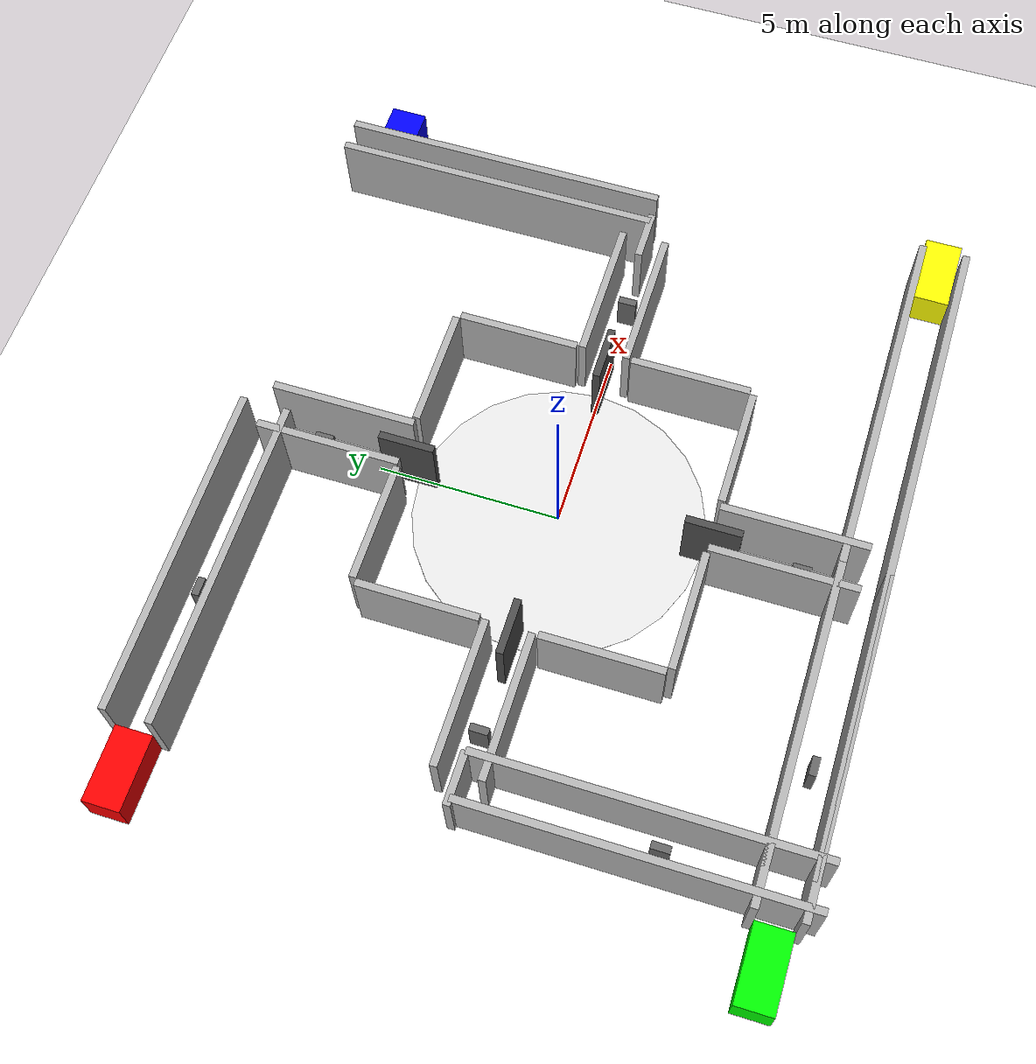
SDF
<?xml version="1.0" ?>
<sdf version="1.7">
  <world name="laberinto_world">

<!-- Plugins needed for the simulation                     -->
<!-- Gazebo uses system plugins to enable core features   -->

<!-- Physics engine: enables dynamics simulation
     (gravity, collisions, wheel motion, forces) -->
<plugin filename="gz-sim-physics-system"
        name="gz::sim::systems::Physics"/>

<!-- User commands: allows external commands such as
     spawning or deleting entities from ROS or CLI -->
<plugin filename="gz-sim-user-commands-system"
        name="gz::sim::systems::UserCommands"/>

<!-- Scene broadcaster: sends simulation updates to
     the GUI so objects move correctly in the viewer -->
<plugin filename="gz-sim-scene-broadcaster-system"
        name="gz::sim::systems::SceneBroadcaster"/>

<plugin name="gz::sim::systems::Imu" filename="gz-sim-imu-system"/>

<!-- Sensors system: enables simulated sensors such as
     LiDAR, cameras, IMU, etc. Without this plugin
     sensors exist but do not produce data -->
<plugin filename="gz-sim-sensors-system"
        name="gz::sim::systems::Sensors">

  <!-- Rendering engine used by sensors.
       "ogre2" is standard but WSL2 often works better with "ogre". -->
  <render_engine>ogre2</render_engine>

</plugin>

    <!-- Sun -->
    <include>
      <uri>https://fuel.gazebosim.org/1.0/OpenRobotics/models/Sun</uri>
    </include>

<!-- White floor -->
<model name="white_floor">
  <static>true</static>
  <pose>0 0 0 0 0 0</pose>

  <link name="floor_link">

    <collision name="collision">
      <geometry>
        <plane>
          <normal>0 0 1</normal>
          <size>40 40</size>
        </plane>
      </geometry>
    </collision>

    <visual name="visual">
      <geometry>
        <plane>
          <normal>0 0 1</normal>
          <size>40 40</size>
        </plane>
      </geometry>

      <material>
        <ambient>1 1 1 1</ambient>
        <diffuse>1 1 1 1</diffuse>
        <specular>0.1 0.1 0.1 1</specular>
      </material>

    </visual>

  </link>
</model>

    <!-- CENTRAL ROOM (Square with round visual)               -->

    <!-- Central Room Walls (8x8m inner square, 0.2m thick, 2m high) -->
    <!-- Outer boundary of central room is x,y = +/- 4.1m -->
    <!-- Door width = 1.5m. Remaining wall length on each side = (8 - 1.5) / 2 = 3.25m -->

    <!-- North Wall Segments (y = 4.1) -->
    <model name="central_wall_north_left">
      <static>true</static>
      <pose>-2.375 4.1 1 0 0 0</pose>
      <link name="link"><collision name="collision"><geometry><box><size>3.25 0.2 2</size></box></geometry></collision><visual name="visual"><geometry><box><size>3.25 0.2 2</size></box></geometry><material><ambient>0.7 0.7 0.7 1</ambient><diffuse>0.7 0.7 0.7 1</diffuse></material></visual></link>
    </model>
    <model name="central_wall_north_right">
      <static>true</static>
      <pose>2.375 4.1 1 0 0 0</pose>
      <link name="link"><collision name="collision"><geometry><box><size>3.25 0.2 2</size></box></geometry></collision><visual name="visual"><geometry><box><size>3.25 0.2 2</size></box></geometry><material><ambient>0.7 0.7 0.7 1</ambient><diffuse>0.7 0.7 0.7 1</diffuse></material></visual></link>
    </model>
    <!-- South Wall Segments (y = -4.1) -->
    <model name="central_wall_south_left">
      <static>true</static>
      <pose>-2.375 -4.1 1 0 0 0</pose>
      <link name="link"><collision name="collision"><geometry><box><size>3.25 0.2 2</size></box></geometry></collision><visual name="visual"><geometry><box><size>3.25 0.2 2</size></box></geometry><material><ambient>0.7 0.7 0.7 1</ambient><diffuse>0.7 0.7 0.7 1</diffuse></material></visual></link>
    </model>
    <model name="central_wall_south_right">
      <static>true</static>
      <pose>2.375 -4.1 1 0 0 0</pose>
      <link name="link"><collision name="collision"><geometry><box><size>3.25 0.2 2</size></box></geometry></collision><visual name="visual"><geometry><box><size>3.25 0.2 2</size></box></geometry><material><ambient>0.7 0.7 0.7 1</ambient><diffuse>0.7 0.7 0.7 1</diffuse></material></visual></link>
    </model>
    <!-- East Wall Segments (x = 4.1) -->
    <model name="central_wall_east_bottom">
      <static>true</static>
      <pose>4.1 -2.375 1 0 0 0</pose>
      <link name="link"><collision name="collision"><geometry><box><size>0.2 3.25 2</size></box></geometry></collision><visual name="visual"><geometry><box><size>0.2 3.25 2</size></box></geometry><material><ambient>0.7 0.7 0.7 1</ambient><diffuse>0.7 0.7 0.7 1</diffuse></material></visual></link>
    </model>
    <model name="central_wall_east_top">
      <static>true</static>
      <pose>4.1 2.375 1 0 0 0</pose>
      <link name="link"><collision name="collision"><geometry><box><size>0.2 3.25 2</size></box></geometry></collision><visual name="visual"><geometry><box><size>0.2 3.25 2</size></box></geometry><material><ambient>0.7 0.7 0.7 1</ambient><diffuse>0.7 0.7 0.7 1</diffuse></material></visual></link>
    </model>
    <!-- West Wall Segments (x = -4.1) -->
    <model name="central_wall_west_bottom">
      <static>true</static>
      <pose>-4.1 -2.375 1 0 0 0</pose>
      <link name="link"><collision name="collision"><geometry><box><size>0.2 3.25 2</size></box></geometry></collision><visual name="visual"><geometry><box><size>0.2 3.25 2</size></box></geometry><material><ambient>0.7 0.7 0.7 1</ambient><diffuse>0.7 0.7 0.7 1</diffuse></material></visual></link>
    </model>
    <model name="central_wall_west_top">
      <static>true</static>
      <pose>-4.1 2.375 1 0 0 0</pose>
      <link name="link"><collision name="collision"><geometry><box><size>0.2 3.25 2</size></box></geometry></collision><visual name="visual"><geometry><box><size>0.2 3.25 2</size></box></geometry><material><ambient>0.7 0.7 0.7 1</ambient><diffuse>0.7 0.7 0.7 1</diffuse></material></visual></link>
    </model>

    <!-- Closed Doors (1.5m wide, 0.2m deep, 2m high) -->
    <model name="door_north">
      <static>true</static>
      <pose>0 4.1 1 0 0 0</pose>
      <link name="link"><collision name="collision"><geometry><box><size>0.2 1.5 2</size></box></geometry></collision><visual name="visual"><geometry><box><size>0.2 1.5 2</size></box></geometry><material><ambient>0.3 0.3 0.3 1</ambient><diffuse>0.3 0.3 0.3 1</diffuse></material></visual></link>
    </model>
    <model name="door_south">
      <static>true</static>
      <pose>0 -4.1 1 0 0 0</pose>
      <link name="link"><collision name="collision"><geometry><box><size>0.2 1.5 2</size></box></geometry></collision><visual name="visual"><geometry><box><size>0.2 1.5 2</size></box></geometry><material><ambient>0.3 0.3 0.3 1</ambient><diffuse>0.3 0.3 0.3 1</diffuse></material></visual></link>
    </model>
    <model name="door_east">
      <static>true</static>
      <pose>4.1 0 1 0 0 1.5708</pose>
      <link name="link"><collision name="collision"><geometry><box><size>0.2 1.5 2</size></box></geometry></collision><visual name="visual"><geometry><box><size>0.2 1.5 2</size></box></geometry><material><ambient>0.3 0.3 0.3 1</ambient><diffuse>0.3 0.3 0.3 1</diffuse></material></visual></link>
    </model>
    <model name="door_west">
      <static>true</static>
      <pose>-4.1 0 1 0 0 1.5708</pose>
      <link name="link"><collision name="collision"><geometry><box><size>0.2 1.5 2</size></box></geometry></collision><visual name="visual"><geometry><box><size>0.2 1.5 2</size></box></geometry><material><ambient>0.3 0.3 0.3 1</ambient><diffuse>0.3 0.3 0.3 1</diffuse></material></visual></link>
    </model>

    <!-- Visual for "round" common room on the floor -->
    <model name="central_room_floor_visual">
      <static>true</static>
      <pose>0 0 0.01 0 0 0</pose> <!-- Slightly above the main floor -->
      <link name="link">
        <visual name="visual">
          <geometry><cylinder><radius>3.9</radius><length>0.01</length></cylinder></geometry>
          <material>
            <ambient>0.9 0.9 0.9 1</ambient>
            <diffuse>0.9 0.9 0.9 1</diffuse>
          </material>
        </visual>
      </link>
    </model>

    <!-- NORTH HALLWAY (to Red Shelf at -10, 8)                -->
    <!-- Hallway width: 1.0m. Walls are 0.2m thick.            -->
    <!-- Path: North (from y=4.1 to y=8.0), then West (from x=0 to x=-10) -->

    <!-- Segment 1 (North) -->
    <model name="hall_N_seg1_wall_W">
      <static>true</static>
      <pose>-0.6 6.05 1 0 0 0</pose> <!-- x: -0.5 (inner edge) - 0.1 (half wall thickness) = -0.6 -->
      <link name="link"><collision name="collision"><geometry><box><size>0.2 3.9 2</size></box></geometry></collision><visual name="visual"><geometry><box><size>0.2 3.9 2</size></box></geometry><material><ambient>0.7 0.7 0.7 1</ambient><diffuse>0.7 0.7 0.7 1</diffuse></material></visual></link>
    </model>
    <model name="hall_N_seg1_wall_E">
      <static>true</static>
      <pose>0.6 6.05 1 0 0 0</pose> <!-- x: 0.5 (inner edge) + 0.1 (half wall thickness) = 0.6 -->
      <link name="link"><collision name="collision"><geometry><box><size>0.2 3.9 2</size></box></geometry></collision><visual name="visual"><geometry><box><size>0.2 3.9 2</size></box></geometry><material><ambient>0.7 0.7 0.7 1</ambient><diffuse>0.7 0.7 0.7 1</diffuse></material></visual></link>
    </model>
    <!-- Obstacle 1 (Pillar) -->
    <model name="hall_N_obs1">
      <static>true</static>
      <pose>0 6.5 0.5 0 0 0</pose>
      <link name="link"><collision name="collision"><geometry><box><size>0.2 0.5 1</size></box></geometry></collision><visual name="visual"><geometry><box><size>0.2 0.5 1</size></box></geometry><material><ambient>0.4 0.4 0.4 1</ambient><diffuse>0.4 0.4 0.4 1</diffuse></material></visual></link>
    </model>
    <!-- Segment 2 (West to shelf) -->
    <model name="hall_N_seg2_wall_N">
      <static>true</static>
      <pose>-4.5 8.6 1 0 0 0</pose> <!-- y: 8.0 (hallway center) + 0.5 (half width) + 0.1 (half wall thickness) = 8.6 -->
      <link name="link"><collision name="collision"><geometry><box><size>9 0.2 2</size></box></geometry></collision><visual name="visual"><geometry><box><size>9 0.2 2</size></box></geometry><material><ambient>0.7 0.7 0.7 1</ambient><diffuse>0.7 0.7 0.7 1</diffuse></material></visual></link>
    </model>
    <model name="hall_N_seg2_wall_S">
      <static>true</static>
      <pose>-4.5 7.4 1 0 0 0</pose> <!-- y: 8.0 (hallway center) - 0.5 (half width) - 0.1 (half wall thickness) = 7.4 -->
      <link name="link"><collision name="collision"><geometry><box><size>9 0.2 2</size></box></geometry></collision><visual name="visual"><geometry><box><size>9 0.2 2</size></box></geometry><material><ambient>0.7 0.7 0.7 1</ambient><diffuse>0.7 0.7 0.7 1</diffuse></material></visual></link>
    </model>
    <!-- Obstacle 2 (Wall segment) -->
    <model name="hall_N_obs2">
      <static>true</static>
      <pose>-5 8 0.5 0 0 0</pose>
      <link name="link"><collision name="collision"><geometry><box><size>0.5 0.2 1</size></box></geometry></collision><visual name="visual"><geometry><box><size>0.5 0.2 1</size></box></geometry><material><ambient>0.4 0.4 0.4 1</ambient><diffuse>0.4 0.4 0.4 1</diffuse></material></visual></link>
    </model>

    <!-- EAST HALLWAY (to Blue Shelf at 10, 8)                 -->
    <!-- Hallway width: 1.0m. Walls are 0.2m thick.            -->
    <!-- Path: East (from x=4.1 to x=8.0), then North (from y=0 to y=8) -->

    <!-- Segment 1 (East) -->
    <model name="hall_E_seg1_wall_S">
      <static>true</static>
      <pose>6.05 -0.6 1 0 0 0</pose>
      <link name="link"><collision name="collision"><geometry><box><size>3.9 0.2 2</size></box></geometry></collision><visual name="visual"><geometry><box><size>3.9 0.2 2</size></box></geometry><material><ambient>0.7 0.7 0.7 1</ambient><diffuse>0.7 0.7 0.7 1</diffuse></material></visual></link>
    </model>
    <model name="hall_E_seg1_wall_N">
      <static>true</static>
      <pose>6.05 0.6 1 0 0 0</pose>
      <link name="link"><collision name="collision"><geometry><box><size>3.9 0.2 2</size></box></geometry></collision><visual name="visual"><geometry><box><size>3.9 0.2 2</size></box></geometry><material><ambient>0.7 0.7 0.7 1</ambient><diffuse>0.7 0.7 0.7 1</diffuse></material></visual></link>
    </model>
    <!-- Obstacle 1 (Pillar) -->
    <model name="hall_E_obs1">
      <static>true</static>
      <pose>6.5 0 0.5 0 0 1.5708</pose>
      <link name="link"><collision name="collision"><geometry><box><size>0.5 0.2 1</size></box></geometry></collision><visual name="visual"><geometry><box><size>0.5 0.2 1</size></box></geometry><material><ambient>0.4 0.4 0.4 1</ambient><diffuse>0.4 0.4 0.4 1</diffuse></material></visual></link>
    </model>
    <!-- Turn North Wall (closes off the east path, forces north turn) -->
    <model name="hall_E_turn_wall_E">
      <static>true</static>
      <pose>8.1 0 1 0 0 1.5708</pose>
      <link name="link"><collision name="collision"><geometry><box><size>0.2 1.4 2</size></box></geometry></collision><visual name="visual"><geometry><box><size>0.2 1.4 2</size></box></geometry><material><ambient>0.7 0.7 0.7 1</ambient><diffuse>0.7 0.7 0.7 1</diffuse></material></visual></link>
    </model>
    <!-- Segment 2 (North to shelf) -->
    <model name="hall_E_seg2_wall_W">
      <static>true</static>
      <pose>8.6 4.5 1 0 0 0</pose>
      <link name="link"><collision name="collision"><geometry><box><size>0.2 9 2</size></box></geometry></collision><visual name="visual"><geometry><box><size>0.2 9 2</size></box></geometry><material><ambient>0.7 0.7 0.7 1</ambient><diffuse>0.7 0.7 0.7 1</diffuse></material></visual></link>
    </model>
    <model name="hall_E_seg2_wall_E">
      <static>true</static>
      <pose>9.4 4.5 1 0 0 0</pose>
      <link name="link"><collision name="collision"><geometry><box><size>0.2 9 2</size></box></geometry></collision><visual name="visual"><geometry><box><size>0.2 9 2</size></box></geometry><material><ambient>0.7 0.7 0.7 1</ambient><diffuse>0.7 0.7 0.7 1</diffuse></material></visual></link>
    </model>
    <!-- Obstacle 2 (Wall segment) -->
    <model name="hall_E_obs2">
      <static>true</static>
      <pose>9 5 0.5 0 0 1.5708</pose>
      <link name="link"><collision name="collision"><geometry><box><size>0.5 0.2 1</size></box></geometry></collision><visual name="visual"><geometry><box><size>0.5 0.2 1</size></box></geometry><material><ambient>0.4 0.4 0.4 1</ambient><diffuse>0.4 0.4 0.4 1</diffuse></material></visual></link>
    </model>

    <!-- SOUTH HALLWAY (to Green Shelf at -10, -8)             -->
    <!-- Hallway width: 1.0m. Walls are 0.2m thick.            -->
    <!-- Path: South (from y=-4.1 to y=-8.0), then West (from x=0 to x=-10) -->

    <!-- Segment 1 (South) -->
    <model name="hall_S_seg1_wall_W">
      <static>true</static>
      <pose>-0.6 -6.05 1 0 0 0</pose>
      <link name="link"><collision name="collision"><geometry><box><size>0.2 3.9 2</size></box></geometry></collision><visual name="visual"><geometry><box><size>0.2 3.9 2</size></box></geometry><material><ambient>0.7 0.7 0.7 1</ambient><diffuse>0.7 0.7 0.7 1</diffuse></material></visual></link>
    </model>
    <model name="hall_S_seg1_wall_E">
      <static>true</static>
      <pose>0.6 -6.05 1 0 0 0</pose>
      <link name="link"><collision name="collision"><geometry><box><size>0.2 3.9 2</size></box></geometry></collision><visual name="visual"><geometry><box><size>0.2 3.9 2</size></box></geometry><material><ambient>0.7 0.7 0.7 1</ambient><diffuse>0.7 0.7 0.7 1</diffuse></material></visual></link>
    </model>
    <!-- Obstacle 1 (Pillar) -->
    <model name="hall_S_obs1">
      <static>true</static>
      <pose>0 -6.5 0.5 0 0 0</pose>
      <link name="link"><collision name="collision"><geometry><box><size>0.2 0.5 1</size></box></geometry></collision><visual name="visual"><geometry><box><size>0.2 0.5 1</size></box></geometry><material><ambient>0.4 0.4 0.4 1</ambient><diffuse>0.4 0.4 0.4 1</diffuse></material></visual></link>
    </model>
    <!-- Segment 2 (West to shelf) -->
    <model name="hall_S_seg2_wall_N">
      <static>true</static>
      <pose>-4.5 -7.4 1 0 0 0</pose>
      <link name="link"><collision name="collision"><geometry><box><size>9 0.2 2</size></box></geometry></collision><visual name="visual"><geometry><box><size>9 0.2 2</size></box></geometry><material><ambient>0.7 0.7 0.7 1</ambient><diffuse>0.7 0.7 0.7 1</diffuse></material></visual></link>
    </model>
    <model name="hall_S_seg2_wall_S">
      <static>true</static>
      <pose>-4.5 -8.6 1 0 0 0</pose>
      <link name="link"><collision name="collision"><geometry><box><size>9 0.2 2</size></box></geometry></collision><visual name="visual"><geometry><box><size>9 0.2 2</size></box></geometry><material><ambient>0.7 0.7 0.7 1</ambient><diffuse>0.7 0.7 0.7 1</diffuse></material></visual></link>
    </model>
    <!-- Obstacle 2 (Wall segment) -->
    <model name="hall_S_obs2">
      <static>true</static>
      <pose>-5 -8 0.5 0 0 0</pose>
      <link name="link"><collision name="collision"><geometry><box><size>0.5 0.2 1</size></box></geometry></collision><visual name="visual"><geometry><box><size>0.5 0.2 1</size></box></geometry><material><ambient>0.4 0.4 0.4 1</ambient><diffuse>0.4 0.4 0.4 1</diffuse></material></visual></link>
    </model>

    <!-- WEST HALLWAY (to Yellow Shelf at 10, -8)              -->
    <!-- Hallway width: 1.0m. Walls are 0.2m thick.            -->
    <!-- Path: West (from x=-4.1 to x=-8.0), then South (from y=0 to y=-8), then East (from x=-8 to x=10) -->

    <!-- Segment 1 (West) -->
    <model name="hall_W_seg1_wall_S">
      <static>true</static>
      <pose>-6.05 -0.6 1 0 0 0</pose>
      <link name="link"><collision name="collision"><geometry><box><size>3.9 0.2 2</size></box></geometry></collision><visual name="visual"><geometry><box><size>3.9 0.2 2</size></box></geometry><material><ambient>0.7 0.7 0.7 1</ambient><diffuse>0.7 0.7 0.7 1</diffuse></material></visual></link>
    </model>
    <model name="hall_W_seg1_wall_N">
      <static>true</static>
      <pose>-6.05 0.6 1 0 0 0</pose>
      <link name="link"><collision name="collision"><geometry><box><size>3.9 0.2 2</size></box></geometry></collision><visual name="visual"><geometry><box><size>3.9 0.2 2</size></box></geometry><material><ambient>0.7 0.7 0.7 1</ambient><diffuse>0.7 0.7 0.7 1</diffuse></material></visual></link>
    </model>
    <!-- Obstacle 1 (Pillar) -->
    <model name="hall_W_obs1">
      <static>true</static>
      <pose>-6.5 0 0.5 0 0 1.5708</pose>
      <link name="link"><collision name="collision"><geometry><box><size>0.5 0.2 1</size></box></geometry></collision><visual name="visual"><geometry><box><size>0.5 0.2 1</size></box></geometry><material><ambient>0.4 0.4 0.4 1</ambient><diffuse>0.4 0.4 0.4 1</diffuse></material></visual></link>
    </model>
    <!-- Turn South Wall (closes off the west path, forces south turn) -->
    <model name="hall_W_turn_wall_W">
      <static>true</static>
      <pose>-8.1 0 1 0 0 1.5708</pose>
      <link name="link"><collision name="collision"><geometry><box><size>0.2 1.4 2</size></box></geometry></collision><visual name="visual"><geometry><box><size>0.2 1.4 2</size></box></geometry><material><ambient>0.7 0.7 0.7 1</ambient><diffuse>0.7 0.7 0.7 1</diffuse></material></visual></link>
    </model>
    <!-- Segment 2 (South) -->
    <model name="hall_W_seg2_wall_W">
      <static>true</static>
      <pose>-8.6 -4.5 1 0 0 0</pose>
      <link name="link"><collision name="collision"><geometry><box><size>0.2 9 2</size></box></geometry></collision><visual name="visual"><geometry><box><size>0.2 9 2</size></box></geometry><material><ambient>0.7 0.7 0.7 1</ambient><diffuse>0.7 0.7 0.7 1</diffuse></material></visual></link>
    </model>
    <model name="hall_W_seg2_wall_E">
      <static>true</static>
      <pose>-7.4 -4.5 1 0 0 0</pose>
      <link name="link"><collision name="collision"><geometry><box><size>0.2 9 2</size></box></geometry></collision><visual name="visual"><geometry><box><size>0.2 9 2</size></box></geometry><material><ambient>0.7 0.7 0.7 1</ambient><diffuse>0.7 0.7 0.7 1</diffuse></material></visual></link>
    </model>
    <!-- Obstacle 2 (Wall segment) -->
    <model name="hall_W_obs2">
      <static>true</static>
      <pose>-8 -5 0.5 0 0 1.5708</pose>
      <link name="link"><collision name="collision"><geometry><box><size>0.5 0.2 1</size></box></geometry></collision><visual name="visual"><geometry><box><size>0.5 0.2 1</size></box></geometry><material><ambient>0.4 0.4 0.4 1</ambient><diffuse>0.4 0.4 0.4 1</diffuse></material></visual></link>
    </model>
    <!-- Segment 3 (East to shelf) -->
    <model name="hall_W_seg3_wall_N">
      <static>true</static>
      <pose>1.0 -7.4 1 0 0 0</pose>
      <link name="link"><collision name="collision"><geometry><box><size>18 0.2 2</size></box></geometry></collision><visual name="visual"><geometry><box><size>18 0.2 2</size></box></geometry><material><ambient>0.7 0.7 0.7 1</ambient><diffuse>0.7 0.7 0.7 1</diffuse></material></visual></link>
    </model>
    <model name="hall_W_seg3_wall_S">
      <static>true</static>
      <pose>1.0 -8.6 1 0 0 0</pose>
      <link name="link"><collision name="collision"><geometry><box><size>18 0.2 2</size></box></geometry></collision><visual name="visual"><geometry><box><size>18 0.2 2</size></box></geometry><material><ambient>0.7 0.7 0.7 1</ambient><diffuse>0.7 0.7 0.7 1</diffuse></material></visual></link>
    </model>

    <!-- SHELVES / COLORED BOXES (repositioned)                -->

    <model name="shelf_red">
      <static>true</static>
      <pose>-10 8 0.5 0 0 0</pose>
      <link name="link">
        <collision name="collision">
          <geometry><box><size>2 1 1</size></box></geometry>
        </collision>
        <visual name="visual">
          <geometry><box><size>2 1 1</size></box></geometry>
          <material>
            <ambient>1 0 0 1</ambient>
            <diffuse>1 0 0 1</diffuse>
          </material>
        </visual>
      </link>
    </model>

    <model name="shelf_blue">
      <static>true</static>
      <pose>10 8 0.5 0 0 0</pose>
      <link name="link">
        <collision name="collision">
          <geometry><box><size>2 1 1</size></box></geometry>
        </collision>
        <visual name="visual">
          <geometry><box><size>2 1 1</size></box></geometry>
          <material>
            <ambient>0 0 1 1</ambient>
            <diffuse>0 0 1 1</diffuse>
          </material>
        </visual>
      </link>
    </model>

    <model name="shelf_green">
      <static>true</static>
      <pose>-10 -8 0.5 0 0 0</pose>
      <link name="link">
        <collision name="collision">
          <geometry><box><size>2 1 1</size></box></geometry>
        </collision>
        <visual name="visual">
          <geometry><box><size>2 1 1</size></box></geometry>
          <material>
            <ambient>0 1 0 1</ambient>
            <diffuse>0 1 0 1</diffuse>
          </material>
        </visual>
      </link>
    </model>

    <model name="shelf_yellow">
      <static>true</static>
      <pose>10 -8 0.5 0 0 0</pose>
      <link name="link">
        <collision name="collision">
          <geometry><box><size>2 1 1</size></box></geometry>
        </collision>
        <visual name="visual">
          <geometry><box><size>2 1 1</size></box></geometry>
          <material>
            <ambient>1 1 0 1</ambient>
            <diffuse>1 1 0 1</diffuse>
          </material>
        </visual>
      </link>
    </model>

  </world>
</sdf>
